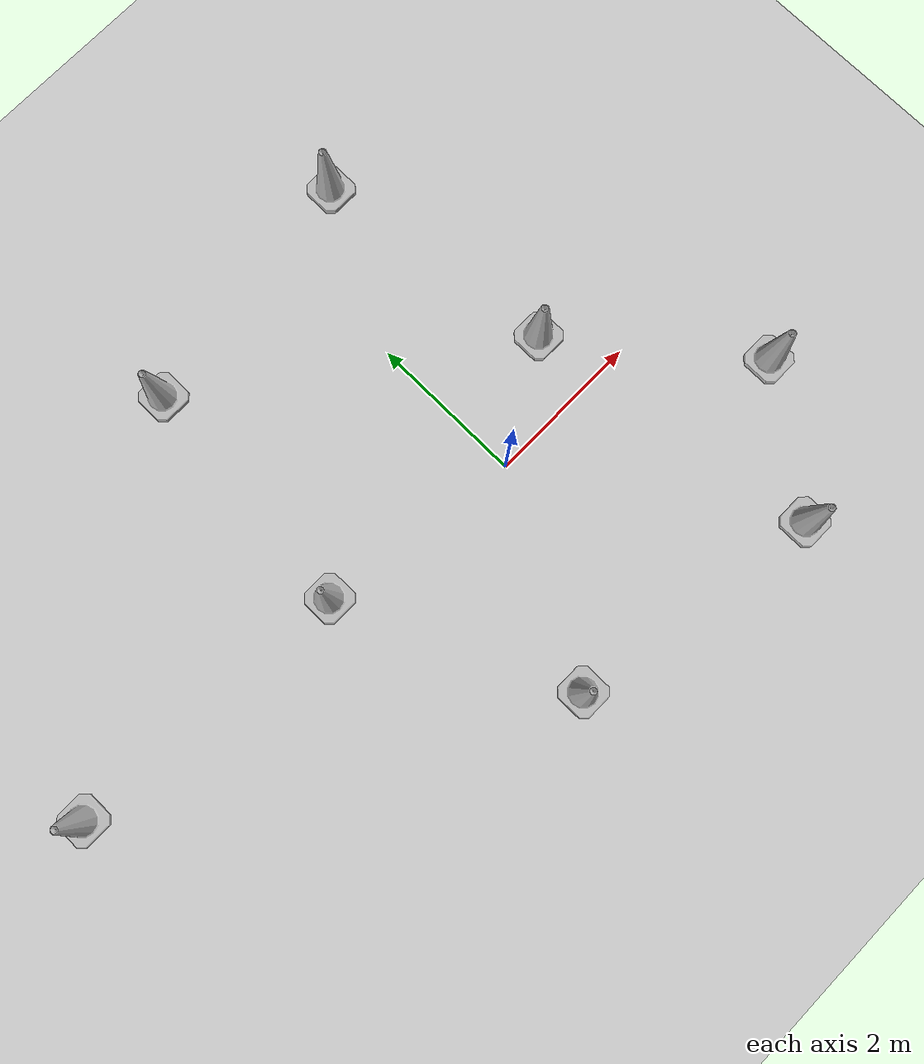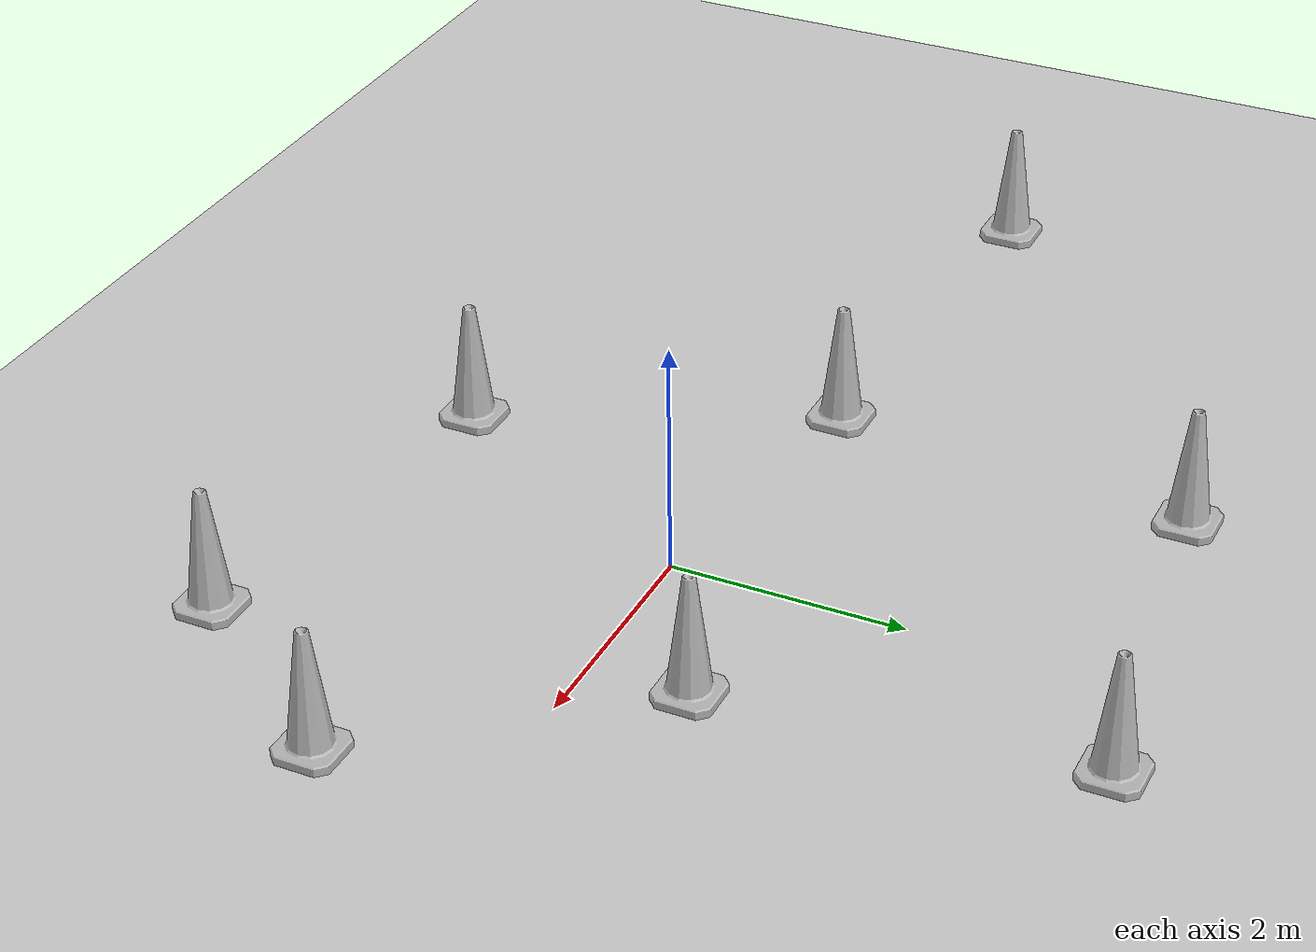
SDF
<sdf version="1.7">
 <world name="default">
  <light name="sun" type="directional">
   <pose>0 0 10 0 -0 0</pose>
   <diffuse>0.8 0.8 0.8 1</diffuse>
   <specular>0.2 0.2 0.2 1</specular>
   <attenuation>
    <range>1000</range>
    <constant>0.9</constant>
    <linear>0.01</linear>
    <quadratic>0.001</quadratic>
   </attenuation>
   <direction>-0.5 0.1 -0.9</direction>
   <spot><inner_angle>0</inner_angle><outer_angle>0</outer_angle><falloff>0</falloff></spot>
  </light>
  <model name="ground_plane">
   <static>1</static>
   <link name="link">
    <collision name="collision">
     <geometry><plane><normal>0 0 1</normal><size>100 100</size></plane></geometry>
     <surface><friction><ode><mu>100</mu><mu2>50</mu2></ode></friction></surface>
    </collision>
    <visual name="visual">
     <cast_shadows>0</cast_shadows>
     <geometry><plane><normal>0 0 1</normal><size>100 100</size></plane></geometry>
     <material>
      <script><uri>file://media/materials/scripts/gazebo.material</uri><name>Gazebo/Grey</name></script>
     </material>
    </visual>
   </link>
  </model>
  <gravity>0 0 -9.8</gravity>
  <magnetic_field>6e-06 2.3e-05 -4.2e-05</magnetic_field>
  <atmosphere type="adiabatic"/>
  <physics type="ode">
   <max_step_size>0.001</max_step_size>
   <real_time_factor>1</real_time_factor>
   <real_time_update_rate>1000</real_time_update_rate>
  </physics>
  <scene><ambient>0.4 0.4 0.4 1</ambient><background>0.7 0.7 0.7 1</background><shadows>1</shadows></scene>
  <audio><device>default</device></audio>
  <spherical_coordinates>
   <surface_model>EARTH_WGS84</surface_model>
   <latitude_deg>0</latitude_deg>
   <longitude_deg>0</longitude_deg>
   <elevation>0</elevation>
   <heading_deg>0</heading_deg>
  </spherical_coordinates>
  <model name="Construction Cone">
   <link name="link">
    <collision name="collision">
     <geometry>
      <mesh><scale>10 10 10</scale><uri>model://construction_cone/meshes/construction_cone.dae</uri></mesh>
     </geometry>
    </collision>
    <visual name="visual">
     <geometry>
      <mesh><scale>10 10 10</scale><uri>model://construction_cone/meshes/construction_cone.dae</uri></mesh>
     </geometry>
    </visual>
    <inertial>
     <inertia><ixx>1</ixx><ixy>0</ixy><ixz>0</ixz><iyy>1</iyy><iyz>0</iyz><izz>1</izz></inertia>
     <mass>1</mass>
    </inertial>
   </link>
   <pose>-1.2913 -2.49109 -0 0 -1e-06 0</pose>
  </model>
  <model name="Construction Cone_clone">
   <link name="link">
    <collision name="collision">
     <geometry>
      <mesh><scale>10 10 10</scale><uri>model://construction_cone/meshes/construction_cone.dae</uri></mesh>
     </geometry>
    </collision>
    <visual name="visual">
     <geometry>
      <mesh><scale>10 10 10</scale><uri>model://construction_cone/meshes/construction_cone.dae</uri></mesh>
     </geometry>
    </visual>
    <inertial>
     <inertia><ixx>1</ixx><ixy>0</ixy><ixz>0</ixz><iyy>1</iyy><iyz>0</iyz><izz>1</izz></inertia>
     <mass>1</mass>
    </inertial>
   </link>
   <pose>-2.58625 0.375827 -0 0 -1e-06 0</pose>
  </model>
  <model name="Construction Cone_clone_0">
   <link name="link">
    <collision name="collision">
     <geometry>
      <mesh><scale>10 10 10</scale><uri>model://construction_cone/meshes/construction_cone.dae</uri></mesh>
     </geometry>
    </collision>
    <visual name="visual">
     <geometry>
      <mesh><scale>10 10 10</scale><uri>model://construction_cone/meshes/construction_cone.dae</uri></mesh>
     </geometry>
    </visual>
    <inertial>
     <inertia><ixx>1</ixx><ixy>0</ixy><ixz>0</ixz><iyy>1</iyy><iyz>0</iyz><izz>1</izz></inertia>
     <mass>1</mass>
    </inertial>
   </link>
   <pose>1.44271 0.840883 -0 0 -0 0</pose>
  </model>
  <model name="Construction Cone_clone_1">
   <link name="link">
    <collision name="collision">
     <geometry>
      <mesh><scale>10 10 10</scale><uri>model://construction_cone/meshes/construction_cone.dae</uri></mesh>
     </geometry>
    </collision>
    <visual name="visual">
     <geometry>
      <mesh><scale>10 10 10</scale><uri>model://construction_cone/meshes/construction_cone.dae</uri></mesh>
     </geometry>
    </visual>
    <inertial>
     <inertia><ixx>1</ixx><ixy>0</ixy><ixz>0</ixz><iyy>1</iyy><iyz>0</iyz><izz>1</izz></inertia>
     <mass>1</mass>
    </inertial>
   </link>
   <pose>-2.28711 3.54426 -0 0 1e-06 0</pose>
  </model>
  <model name="Construction Cone_clone_2">
   <link name="link">
    <collision name="collision">
     <geometry>
      <mesh><scale>10 10 10</scale><uri>model://construction_cone/meshes/construction_cone.dae</uri></mesh>
     </geometry>
    </collision>
    <visual name="visual">
     <geometry>
      <mesh><scale>10 10 10</scale><uri>model://construction_cone/meshes/construction_cone.dae</uri></mesh>
     </geometry>
    </visual>
    <inertial>
     <inertia><ixx>1</ixx><ixy>0</ixy><ixz>0</ixz><iyy>1</iyy><iyz>0</iyz><izz>1</izz></inertia>
     <mass>1</mass>
    </inertial>
   </link>
   <pose>3.19157 -1.36209 -1e-06 2e-06 2e-06 0</pose>
  </model>
  <model name="Construction Cone_clone_3">
   <link name="link">
    <collision name="collision">
     <geometry>
      <mesh><scale>10 10 10</scale><uri>model://construction_cone/meshes/construction_cone.dae</uri></mesh>
     </geometry>
    </collision>
    <visual name="visual">
     <geometry>
      <mesh><scale>10 10 10</scale><uri>model://construction_cone/meshes/construction_cone.dae</uri></mesh>
     </geometry>
    </visual>
    <inertial>
     <inertia><ixx>1</ixx><ixy>0</ixy><ixz>0</ixz><iyy>1</iyy><iyz>0</iyz><izz>1</izz></inertia>
     <mass>1</mass>
    </inertial>
   </link>
   <pose>2 -3 -0 0 -0 0</pose>
  </model>
  <model name="Construction Cone_clone_4">
   <link name="link">
    <collision name="collision">
     <geometry>
      <mesh><scale>10 10 10</scale><uri>model://construction_cone/meshes/construction_cone.dae</uri></mesh>
     </geometry>
    </collision>
    <visual name="visual">
     <geometry>
      <mesh><scale>10 10 10</scale><uri>model://construction_cone/meshes/construction_cone.dae</uri></mesh>
     </geometry>
    </visual>
    <inertial>
     <inertia><ixx>1</ixx><ixy>0</ixy><ixz>0</ixz><iyy>1</iyy><iyz>0</iyz><izz>1</izz></inertia>
     <mass>1</mass>
    </inertial>
   </link>
   <pose>1 4 -0 0 -1e-06 0</pose>
  </model>
  <model name="Construction Cone_clone_5">
   <link name="link">
    <collision name="collision">
     <geometry>
      <mesh><scale>10 10 10</scale><uri>model://construction_cone/meshes/construction_cone.dae</uri></mesh>
     </geometry>
    </collision>
    <visual name="visual">
     <geometry>
      <mesh><scale>10 10 10</scale><uri>model://construction_cone/meshes/construction_cone.dae</uri></mesh>
     </geometry>
    </visual>
    <inertial>
     <inertia><ixx>1</ixx><ixy>0</ixy><ixz>0</ixz><iyy>1</iyy><iyz>0</iyz><izz>1</izz></inertia>
     <mass>1</mass>
    </inertial>
   </link>
   <pose>-6.31498 0.571904 -0 0 -0 0</pose>
  </model>
 </world>
</sdf>
